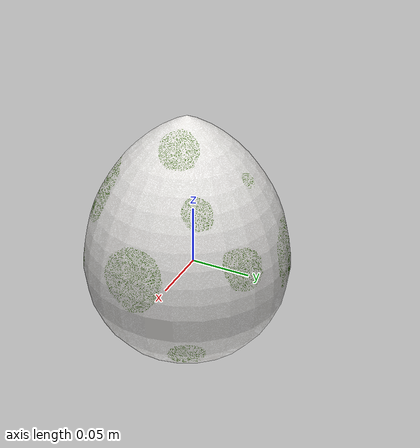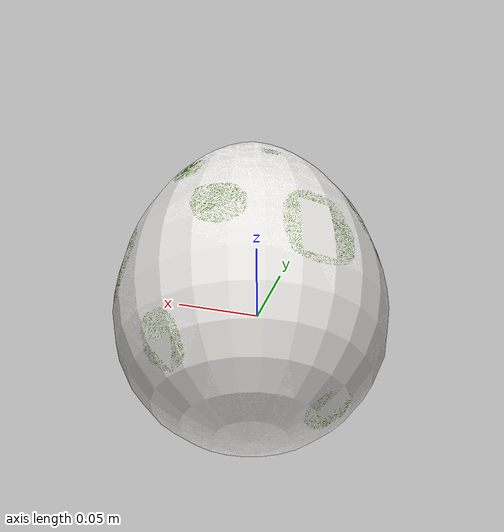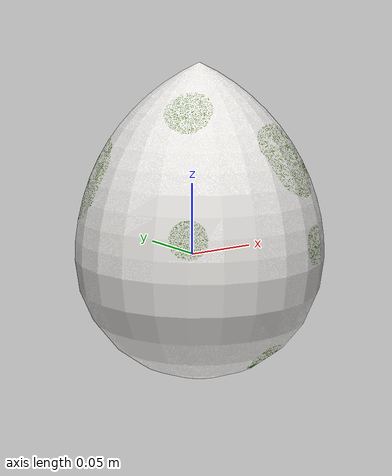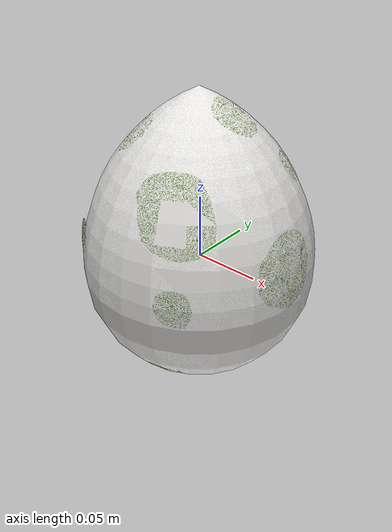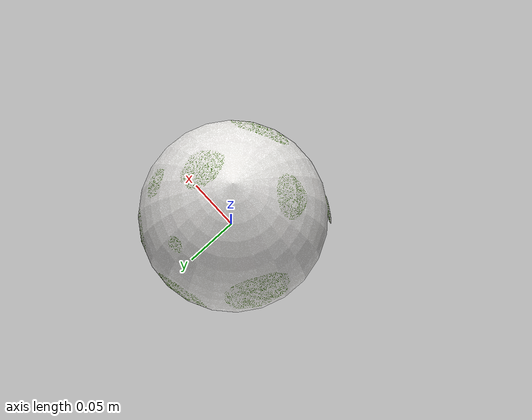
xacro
<robot name="target_box">
  <link name="target_link_1">
    <inertial>
      <origin xyz="0 0 0" />
      <mass value="0.05" />
      <inertia  ixx="0.006" ixy="0"  ixz="0"  iyy="0.006"  iyz="0"  izz="0.002"/>
    </inertial>
    <visual>
      <origin xyz="-0.17 0.09 0"/>

      <geometry>
        <mesh filename="package://kuka_arm/models/yoshi_egg/yoshi_egg.dae" scale="0.02 0.02 0.02"/>
      </geometry>
    </visual>
    <collision>
      <origin xyz="0 0 0"/>
      <geometry>
        <cylinder radius="0.05" length="0.25"/>
        <!--box size="0.10 0.10 0.25"/-->
      </geometry>
    </collision>
  </link>

  <gazebo reference="target_link_1">
    <mu1>1.0</mu1>
    <mu2>1.0</mu2>
  </gazebo>
</robot>
